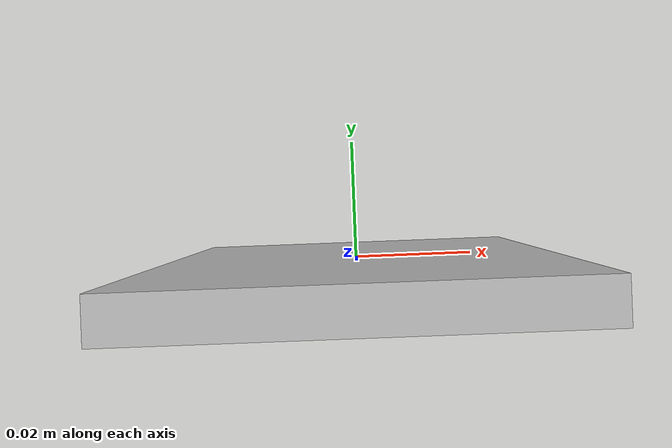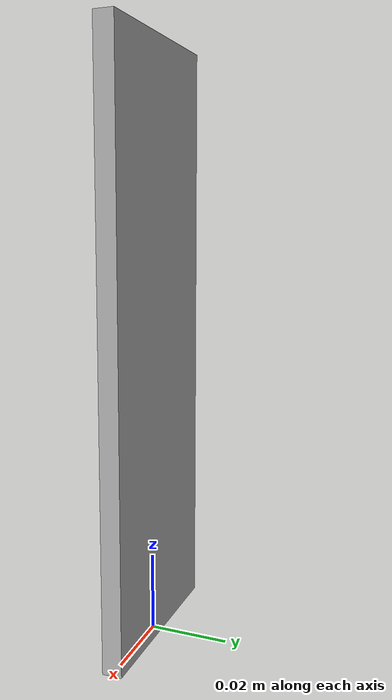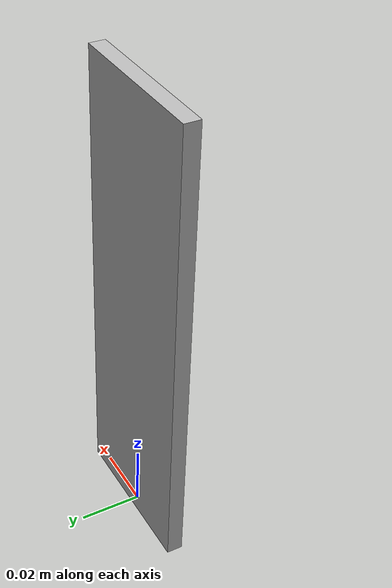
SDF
<?xml version="1.0"?>
<sdf version="1.6">
  <model name="ncm2">
    <static>true</static>
    <pose>0 0 0.075 0 0 0</pose>
    <link name="ncm2">
      <collision name="collision">
        <geometry>
          <box>
            <size>0.05 0.005 0.15</size>
          </box>
        </geometry>
      </collision>

      <visual name="visual">
        <geometry>
          <box>
            <size>0.05 0.005 0.15</size>
          </box>
        </geometry>

        <material>
          <script>
            <uri>model://ncm2/materials/scripts/ncm2.material</uri>
            <uri>model://ncm2/materials/textures/ncm2.png</uri>
            <name>ncm2</name>
          </script>
        </material>
      </visual>
    </link>
  </model>
</sdf>
